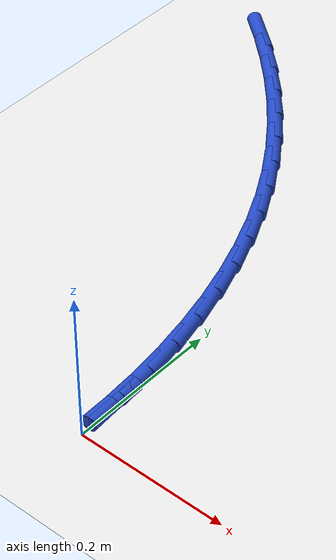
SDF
<sdf version="1.6">
 <world name="default">
  <model name="ground_plane">
   <static>1</static>
   <link name="link">
    <collision name="collision">
     <geometry><plane><normal>0 0 1</normal><size>100 100</size></plane></geometry>
     <surface><friction><ode><mu>100</mu><mu2>50</mu2></ode></friction></surface>
    </collision>
    <visual name="visual">
     <cast_shadows>0</cast_shadows>
     <geometry><plane><normal>0 0 1</normal><size>100 100</size></plane></geometry>
     <material>
      <script><uri>file://media/materials/scripts/gazebo.material</uri><name>Gazebo/WhiteGlow</name></script>
     </material>
    </visual>
   </link>
  </model>
  <model name="line">
   <link name="link_1">
    <pose>-0.000846863289266111 0.05044878057227724 0.01 0 1.57 -1.5048120460281225</pose>
    <collision name="collision">
     <geometry><cylinder><radius>0.01</radius><length>0.08</length></cylinder></geometry>
    </collision>
    <visual name="visual">
     <material>
      <script><name>Gazebo/Blue</name><uri>file://media/materials/scripts/gazebo.material</uri></script>
     </material>
     <geometry><cylinder><radius>0.01</radius><length>0.08</length></cylinder></geometry>
    </visual>
   </link>
   <link name="link_2">
    <pose>-0.004183027712462349 0.10093536881632155 0.01 0 1.57 -1.4546045815174098</pose>
    <collision name="collision">
     <geometry><cylinder><radius>0.01</radius><length>0.08</length></cylinder></geometry>
    </collision>
    <visual name="visual">
     <material>
      <script><name>Gazebo/Blue</name><uri>file://media/materials/scripts/gazebo.material</uri></script>
     </material>
     <geometry><cylinder><radius>0.01</radius><length>0.08</length></cylinder></geometry>
    </visual>
   </link>
   <link name="link_3">
    <pose>-0.010055983220984638 0.1512530773212387 0.01 0 1.57 -1.4030470330745322</pose>
    <collision name="collision">
     <geometry><cylinder><radius>0.01</radius><length>0.08</length></cylinder></geometry>
    </collision>
    <visual name="visual">
     <material>
      <script><name>Gazebo/Blue</name><uri>file://media/materials/scripts/gazebo.material</uri></script>
     </material>
     <geometry><cylinder><radius>0.01</radius><length>0.08</length></cylinder></geometry>
    </visual>
   </link>
   <link name="link_4">
    <pose>-0.018513219766228918 0.20119521867613424 0.01 0 1.57 -1.3498090857388654</pose>
    <collision name="collision">
     <geometry><cylinder><radius>0.01</radius><length>0.08</length></cylinder></geometry>
    </collision>
    <visual name="visual">
     <material>
      <script><name>Gazebo/Blue</name><uri>file://media/materials/scripts/gazebo.material</uri></script>
     </material>
     <geometry><cylinder><radius>0.01</radius><length>0.08</length></cylinder></geometry>
    </visual>
   </link>
   <link name="link_5">
    <pose>-0.029602227299591173 0.25055510547011406 0.01 0 1.57 -1.2945754169645705</pose>
    <collision name="collision">
     <geometry><cylinder><radius>0.01</radius><length>0.08</length></cylinder></geometry>
    </collision>
    <visual name="visual">
     <material>
      <script><name>Gazebo/Blue</name><uri>file://media/materials/scripts/gazebo.material</uri></script>
     </material>
     <geometry><cylinder><radius>0.01</radius><length>0.08</length></cylinder></geometry>
    </visual>
   </link>
   <link name="link_6">
    <pose>-0.043370495772467335 0.2991260502922837 0.01 0 1.57 -1.2370520561739902</pose>
    <collision name="collision">
     <geometry><cylinder><radius>0.01</radius><length>0.08</length></cylinder></geometry>
    </collision>
    <visual name="visual">
     <material>
      <script><name>Gazebo/Blue</name><uri>file://media/materials/scripts/gazebo.material</uri></script>
     </material>
     <geometry><cylinder><radius>0.01</radius><length>0.08</length></cylinder></geometry>
    </visual>
   </link>
   <link name="link_7">
    <pose>-0.059865515136253294 0.3467013657317487 0.01 0 1.57 -1.1769761766404556</pose>
    <collision name="collision">
     <geometry><cylinder><radius>0.01</radius><length>0.08</length></cylinder></geometry>
    </collision>
    <visual name="visual">
     <material>
      <script><name>Gazebo/Blue</name><uri>file://media/materials/scripts/gazebo.material</uri></script>
     </material>
     <geometry><cylinder><radius>0.01</radius><length>0.08</length></cylinder></geometry>
    </visual>
   </link>
   <link name="link_8">
    <pose>-0.07913477534234509 0.3930743643776149 0.01 0 1.57 -1.1141304534891028</pose>
    <collision name="collision">
     <geometry><cylinder><radius>0.01</radius><length>0.08</length></cylinder></geometry>
    </collision>
    <visual name="visual">
     <material>
      <script><name>Gazebo/Blue</name><uri>file://media/materials/scripts/gazebo.material</uri></script>
     </material>
     <geometry><cylinder><radius>0.01</radius><length>0.08</length></cylinder></geometry>
    </visual>
   </link>
   <link name="link_9">
    <pose>-0.1012257362384151 0.4380383859566431 0.01 0 1.57 -1.0496096226033214</pose>
    <collision name="collision">
     <geometry><cylinder><radius>0.01</radius><length>0.08</length></cylinder></geometry>
    </collision>
    <visual name="visual">
     <material>
      <script><name>Gazebo/Blue</name><uri>file://media/materials/scripts/gazebo.material</uri></script>
     </material>
     <geometry><cylinder><radius>0.01</radius><length>0.08</length></cylinder></geometry>
    </visual>
   </link>
   <link name="link_10">
    <pose>-0.12613832176934947 0.4814296224669828 0.01 0 1.57 -0.9872117548518307</pose>
    <collision name="collision">
     <geometry><cylinder><radius>0.01</radius><length>0.08</length></cylinder></geometry>
    </collision>
    <visual name="visual">
     <material>
      <script><name>Gazebo/Blue</name><uri>file://media/materials/scripts/gazebo.material</uri></script>
     </material>
     <geometry><cylinder><radius>0.01</radius><length>0.08</length></cylinder></geometry>
    </visual>
   </link>
   <link name="link_11">
    <pose>-0.15372864336731643 0.5232139088179921 0.01 0 1.57 -0.92775134159099</pose>
    <collision name="collision">
     <geometry><cylinder><radius>0.01</radius><length>0.08</length></cylinder></geometry>
    </collision>
    <visual name="visual">
     <material>
      <script><name>Gazebo/Blue</name><uri>file://media/materials/scripts/gazebo.material</uri></script>
     </material>
     <geometry><cylinder><radius>0.01</radius><length>0.08</length></cylinder></geometry>
    </visual>
   </link>
   <link name="link_12">
    <pose>-0.18382572097345248 0.5633815021316724 0.01 0 1.57 -0.8712505623732291</pose>
    <collision name="collision">
     <geometry><cylinder><radius>0.01</radius><length>0.08</length></cylinder></geometry>
    </collision>
    <visual name="visual">
     <material>
      <script><name>Gazebo/Blue</name><uri>file://media/materials/scripts/gazebo.material</uri></script>
     </material>
     <geometry><cylinder><radius>0.01</radius><length>0.08</length></cylinder></geometry>
    </visual>
   </link>
   <link name="link_13">
    <pose>-0.21625857452889397 0.6019226595300242 0.01 0 1.57 -0.8176561215939029</pose>
    <collision name="collision">
     <geometry><cylinder><radius>0.01</radius><length>0.08</length></cylinder></geometry>
    </collision>
    <visual name="visual">
     <material>
      <script><name>Gazebo/Blue</name><uri>file://media/materials/scripts/gazebo.material</uri></script>
     </material>
     <geometry><cylinder><radius>0.01</radius><length>0.08</length></cylinder></geometry>
    </visual>
   </link>
   <link name="link_14">
    <pose>-0.25085622397477736 0.6388276381350487 0.01 0 1.57 -0.7668561180237977</pose>
    <collision name="collision">
     <geometry><cylinder><radius>0.01</radius><length>0.08</length></cylinder></geometry>
    </collision>
    <visual name="visual">
     <material>
      <script><name>Gazebo/Blue</name><uri>file://media/materials/scripts/gazebo.material</uri></script>
     </material>
     <geometry><cylinder><radius>0.01</radius><length>0.08</length></cylinder></geometry>
    </visual>
   </link>
   <link name="link_15">
    <pose>-0.2874476892522393 0.6740866950687473 0.01 0 1.57 -0.7186955053466644</pose>
    <collision name="collision">
     <geometry><cylinder><radius>0.01</radius><length>0.08</length></cylinder></geometry>
    </collision>
    <visual name="visual">
     <material>
      <script><name>Gazebo/Blue</name><uri>file://media/materials/scripts/gazebo.material</uri></script>
     </material>
     <geometry><cylinder><radius>0.01</radius><length>0.08</length></cylinder></geometry>
    </visual>
   </link>
   <link name="link_16">
    <pose>-0.32586199030241625 0.7076900874531212 0.01 0 1.57 -0.6729892447350059</pose>
    <collision name="collision">
     <geometry><cylinder><radius>0.01</radius><length>0.08</length></cylinder></geometry>
    </collision>
    <visual name="visual">
     <material>
      <script><name>Gazebo/Blue</name><uri>file://media/materials/scripts/gazebo.material</uri></script>
     </material>
     <geometry><cylinder><radius>0.01</radius><length>0.08</length></cylinder></geometry>
    </visual>
   </link>
   <link name="link_141">
    <pose>-0.000840664171289791 0.05047623297702534 0.01 0 1.57 -1.5541432128927266</pose>
    <collision name="collision">
     <geometry><cylinder><radius>0.01</radius><length>0.08</length></cylinder></geometry>
    </collision>
    <visual name="visual">
     <material>
      <script><name>Gazebo/Blue</name><uri>file://media/materials/scripts/gazebo.material</uri></script>
     </material>
     <geometry><cylinder><radius>0.01</radius><length>0.08</length></cylinder></geometry>
    </visual>
   </link>
  </model>
 </world>
</sdf>
